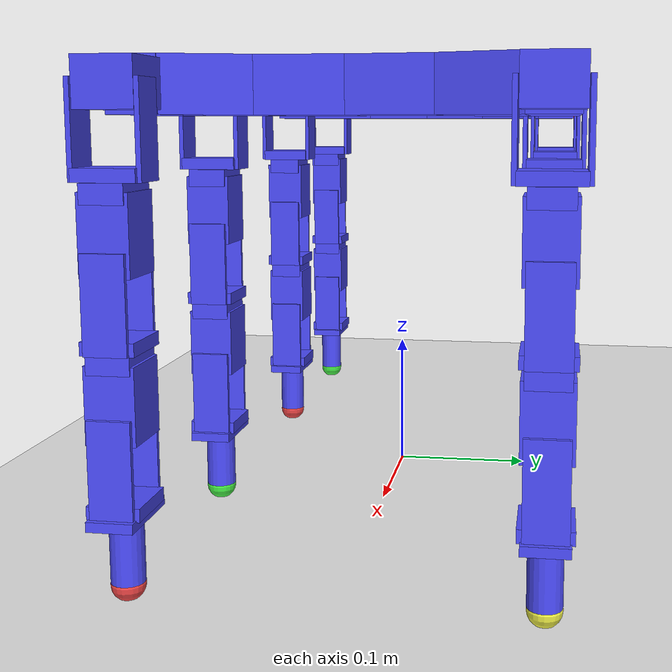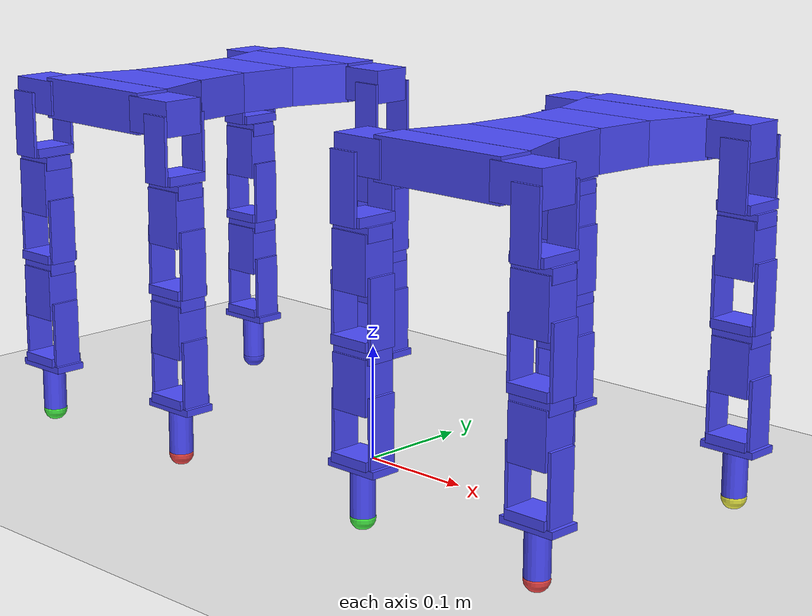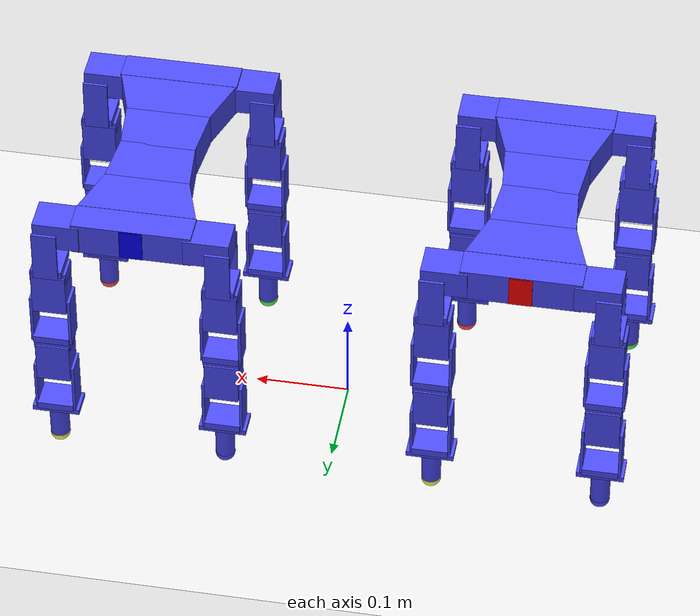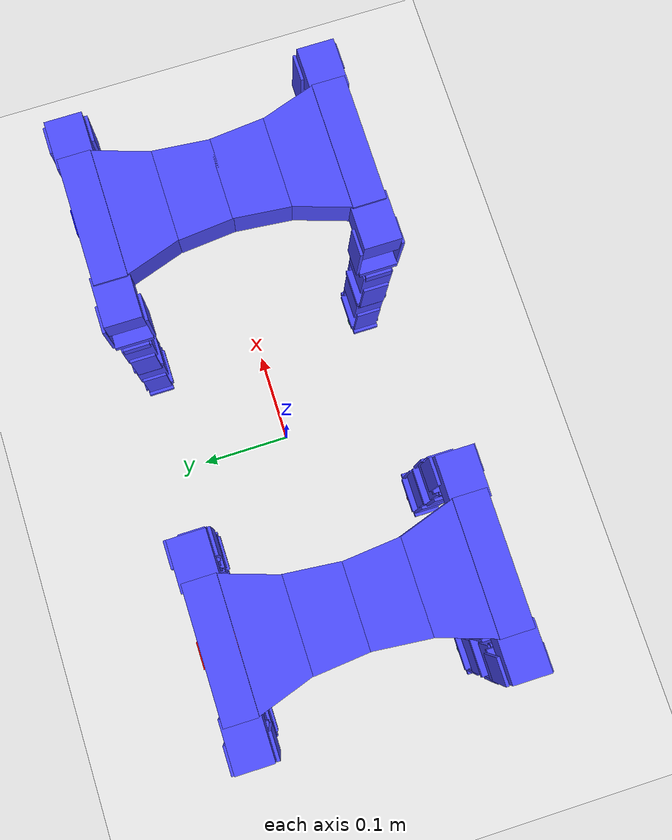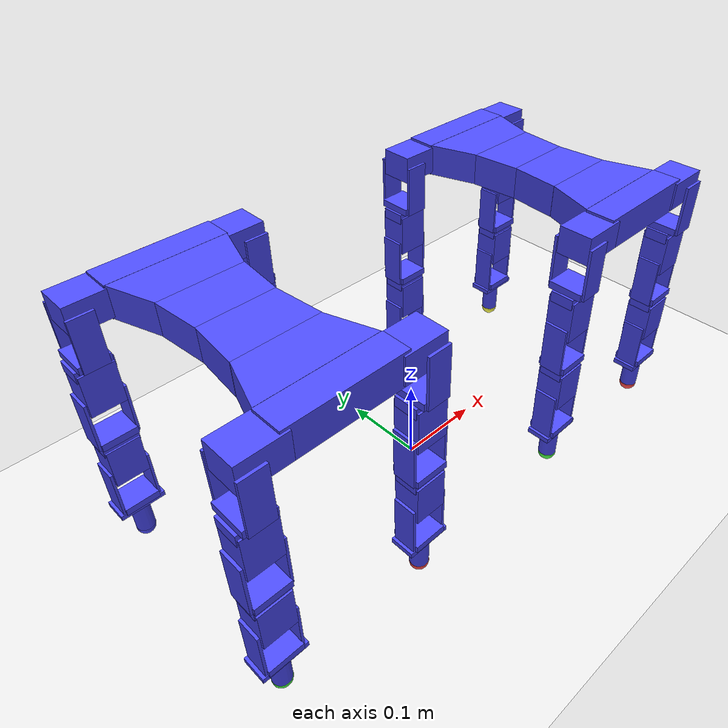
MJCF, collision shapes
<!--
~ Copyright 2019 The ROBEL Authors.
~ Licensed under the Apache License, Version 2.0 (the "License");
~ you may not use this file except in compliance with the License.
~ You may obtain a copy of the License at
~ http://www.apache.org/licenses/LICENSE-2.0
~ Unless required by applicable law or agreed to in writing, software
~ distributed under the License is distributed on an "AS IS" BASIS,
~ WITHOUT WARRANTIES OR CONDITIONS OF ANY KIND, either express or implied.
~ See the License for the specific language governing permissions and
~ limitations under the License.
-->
<?xml version="1.0"?>
<mujoco model="dkitty-v2.1">
  <include file="../scenes/basic_scene.xml"/>
  <include file="assets/dependenciesA_xh-v2.1.xml"/>
  <include file="assets/dependenciesB_xh-v2.1.xml"/>
  <compiler meshdir="."/>
  <worldbody>
    <body name="A:kitty_frame" pos="0.2 0 0.3">
      <camera name="A:trackingZ" pos="0 0 3" zaxis="0 0 3" mode="trackcom"/>
      <camera name="A:trackingY" pos="1.5 1.5 .35" xyaxes="-.7 1 0 0 -.3 1" mode="trackcom"/>
      <joint name="A:Tx" pos="0 0 0" axis="1 0 0" limited="true" type="slide" range="-5 5"/>
      <joint name="A:Ty" pos="0 0 0" axis="0 1 0" limited="true" type="slide" range="-5 5"/>
      <joint name="A:Tz" pos="0 0 0" axis="0 0 1" limited="true" type="slide" range="-2 2"/>
      <joint name="A:Rx" pos="0 0 0" axis="1 0 0" limited="true" range="-1.57 1.57"/>
      <joint name="A:Ry" pos="0 0 0" axis="0 1 0" limited="true" range="-1.57 1.57"/>
      <joint name="A:Rz" pos="0 0 0" axis="0 0 1" limited="true" range="-1.57 1.57"/>
      <include file="assets/chainA_xh-v2.1.xml"/>
    </body>
    <body name="B:kitty_frame" pos="-.2 0 0.3">
      <camera name="B:trackingZ" pos="0 0 3" zaxis="0 0 3" mode="trackcom"/>
      <camera name="B:trackingY" pos="1.5 1.5 .35" xyaxes="-.7 1 0 0 -.3 1" mode="trackcom"/>
      <joint name="B:Tx" pos="0 0 0" axis="1 0 0" limited="true" type="slide" range="-5 5"/>
      <joint name="B:Ty" pos="0 0 0" axis="0 1 0" limited="true" type="slide" range="-5 5"/>
      <joint name="B:Tz" pos="0 0 0" axis="0 0 1" limited="true" type="slide" range="-2 2"/>
      <joint name="B:Rx" pos="0 0 0" axis="1 0 0" limited="true" range="-1.57 1.57"/>
      <joint name="B:Ry" pos="0 0 0" axis="0 1 0" limited="true" range="-1.57 1.57"/>
      <joint name="B:Rz" pos="0 0 0" axis="0 0 1" limited="true" range="-1.57 1.57"/>
      <include file="assets/chainB_xh-v2.1.xml"/>
    </body>
  </worldbody>
</mujoco>

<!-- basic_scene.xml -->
<mujocoinclude>
  <asset>
    <texture name="skybox" type="skybox" builtin="gradient" rgb1=".08 .09 .10" rgb2="0 0 0" width="800" height="800" mark="random" markrgb=".8 .8 .8"/>
    <texture name="texplane" type="2d" height="1" width="1" file="../scenes/textures/white_marble_tile2.png"/>
    <material name="MatPlane" reflectance="0.05" texture="texplane" texrepeat="4 4" texuniform="true"/>
  </asset>
  <visual>
    <map fogstart="1.5" fogend="5" force="0.1" znear="0.1"/>
    <quality shadowsize="4096" offsamples="4"/>
  </visual>
  <worldbody>
    <light directional="true" diffuse=".3 .3 .3" specular="0.3 0.3 0.3" pos="-1 -1 1" dir="1 1 -1"/>
    <light directional="true" diffuse=".3 .3 .3" specular="0.3 0.3 0.3" pos="1 -1 1" dir="-1 1 -1"/>
    <light directional="true" diffuse=".3 .3 .3" specular="0.3 0.3 0.3" pos="0 1 1" dir="0 -1 -1"/>
    <geom name="floor" pos="0 0 0" size="5 5 .1" conaffinity="1" contype="1" type="plane" material="MatPlane" condim="3"/>
    <site name="xaxis" pos=".5 0 0" size=".005 .5" type="capsule" rgba="1 0 0 .25" euler="0 1.57 0" group="3"/>
    <site name="yaxis" pos="0 .5 0" size=".005 .5" type="capsule" rgba="0 1 0 .25" euler="1.57 0 0" group="3"/>
  </worldbody>
</mujocoinclude>

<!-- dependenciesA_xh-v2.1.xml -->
<mujocoinclude>
  <compiler angle="radian" inertiafromgeom="auto" inertiagrouprange="4 5"/>
  <option timestep="0.0025"/>
  <size njmax="400" nconmax="400"/>
  <asset>
    <material name="metal_black" specular="1" shininess="1" rgba="0.25 0.25 0.25 1.0"/>
    <material name="metal_grey" specular=".8" shininess=".8" rgba="0.5 0.5 0.5 1.0"/>
    <material name="plastic" specular="0.3" shininess="0" rgba="1 1 1 1"/>
    <material name="greenish" specular="0" shininess="0" rgba="0.3 1 0.3 1"/>
  </asset>
  <default>
    <default class="dkitty">
      <joint limited="true" damping="1" armature="0.001"/>
      <geom contype="1" conaffinity="1" condim="4" group="1" margin="0.001" solref=".02 1" solimp=".8 .9 .01"/>
      <position ctrlrange="-1.57 1.57" ctrllimited="true" kp="5"/>
      <default class="viz_metal_black">
        <geom contype="0" conaffinity="0" group="1" type="mesh" material="metal_black" mass="0"/>
      </default>
      <default class="viz_metal_grey">
        <geom contype="0" conaffinity="0" group="1" type="mesh" material="metal_grey" mass="0"/>
      </default>
      <default class="viz_plastic">
        <geom contype="0" conaffinity="0" group="1" type="mesh" material="plastic" mass="0"/>
      </default>
      <default class="collision">
        <geom contype="1" conaffinity="1" group="4" rgba="0.3 0.3 1.0 0.5"/>
        <site group="4"/>
      </default>
    </default>
  </default>
  <asset>
    <mesh file="../dkitty/meshes/bulkhead.stl" name="bulkhead"/>
    <mesh file="../dkitty/meshes/D_kitty_plates_V2.stl" name="D_kitty_plates_V2"/>
    <mesh file="../dkitty/meshes/bulkhead_low_poly.stl" name="bulkhead_low_poly"/>
    <mesh file="../dkitty/meshes/bulkhead_low_poly1.stl" name="bulkhead_low_poly1"/>
    <mesh file="../dkitty/meshes/bulkhead_low_poly2.stl" name="bulkhead_low_poly2"/>
    <mesh file="../dkitty/meshes/bulkhead_low_poly3.stl" name="bulkhead_low_poly3"/>
    <mesh file="../dkitty/meshes/bulkhead_low_poly4.stl" name="bulkhead_low_poly4"/>
    <mesh file="../dkitty/meshes/bulkhead_low_poly5.stl" name="bulkhead_low_poly5"/>
    <mesh file="../dkitty/meshes/fr12_h103_3.stl" name="fr12_h103_3"/>
    <mesh file="../dkitty/meshes/screws.stl" name="screws"/>
    <mesh file="../dkitty/meshes/x430_dkitty_2.stl" name="x430_dkitty_2"/>
    <mesh file="../dkitty/meshes/xh_clamping_small.stl" name="xh_clamping_small"/>
    <mesh file="../dkitty/meshes/xh_finger_tip.stl" name="xh_finger_tip"/>
  </asset>
  <actuator>
    <position name="A:FRJ10" joint="A:FRJ10" class="dkitty" ctrlrange="-3.419 0.279"/>
    <position name="A:FRJ11" joint="A:FRJ11" class="dkitty" ctrlrange="-2.14 2.14"/>
    <position name="A:FRJ12" joint="A:FRJ12" class="dkitty" ctrlrange="-1.57 1.57"/>
    <position name="A:FLJ20" joint="A:FLJ20" class="dkitty" ctrlrange="-0.279 3.419"/>
    <position name="A:FLJ21" joint="A:FLJ21" class="dkitty" ctrlrange="-2.14 2.14"/>
    <position name="A:FLJ22" joint="A:FLJ22" class="dkitty" ctrlrange="-1.57 1.57"/>
    <position name="A:BLJ30" joint="A:BLJ30" class="dkitty" ctrlrange="-0.279 3.419"/>
    <position name="A:BLJ31" joint="A:BLJ31" class="dkitty" ctrlrange="-2.14 2.14"/>
    <position name="A:BLJ32" joint="A:BLJ32" class="dkitty" ctrlrange="-1.57 1.57"/>
    <position name="A:BRJ40" joint="A:BRJ40" class="dkitty" ctrlrange="-3.419 0.279"/>
    <position name="A:BRJ41" joint="A:BRJ41" class="dkitty" ctrlrange="-2.14 2.14"/>
    <position name="A:BRJ42" joint="A:BRJ42" class="dkitty" ctrlrange="-1.57 1.57"/>
  </actuator>
  <sensor>
    <jointpos name="A:FRJ10_pos_sensor" joint="A:FRJ10"/>
    <jointpos name="A:FRJ11_pos_sensor" joint="A:FRJ11"/>
    <jointpos name="A:FRJ12_pos_sensor" joint="A:FRJ12"/>
    <jointpos name="A:FLJ20_pos_sensor" joint="A:FLJ20"/>
    <jointpos name="A:FLJ21_pos_sensor" joint="A:FLJ21"/>
    <jointpos name="A:FLJ22_pos_sensor" joint="A:FLJ22"/>
    <jointpos name="A:BLJ30_pos_sensor" joint="A:BLJ30"/>
    <jointpos name="A:BLJ31_pos_sensor" joint="A:BLJ31"/>
    <jointpos name="A:BLJ32_pos_sensor" joint="A:BLJ32"/>
    <jointpos name="A:BRJ40_pos_sensor" joint="A:BRJ40"/>
    <jointpos name="A:BRJ41_pos_sensor" joint="A:BRJ41"/>
    <jointpos name="A:BRJ42_pos_sensor" joint="A:BRJ42"/>
    <jointvel name="A:FRJ10_velocity_sensor" joint="A:FRJ10"/>
    <jointvel name="A:FRJ11_velocity_sensor" joint="A:FRJ11"/>
    <jointvel name="A:FRJ12_velocity_sensor" joint="A:FRJ12"/>
    <jointvel name="A:FLJ20_velocity_sensor" joint="A:FLJ20"/>
    <jointvel name="A:FLJ21_velocity_sensor" joint="A:FLJ21"/>
    <jointvel name="A:FLJ22_velocity_sensor" joint="A:FLJ22"/>
    <jointvel name="A:BLJ30_velocity_sensor" joint="A:BLJ30"/>
    <jointvel name="A:BLJ31_velocity_sensor" joint="A:BLJ31"/>
    <jointvel name="A:BLJ32_velocity_sensor" joint="A:BLJ32"/>
    <jointvel name="A:BRJ40_velocity_sensor" joint="A:BRJ40"/>
    <jointvel name="A:BRJ41_velocity_sensor" joint="A:BRJ41"/>
    <jointvel name="A:BRJ42_velocity_sensor" joint="A:BRJ42"/>
  </sensor>
</mujocoinclude>

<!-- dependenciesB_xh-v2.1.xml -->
<mujocoinclude>
  <actuator>
    <position name="B:FRJ10" joint="B:FRJ10" class="dkitty" ctrlrange="-3.419 0.279"/>
    <position name="B:FRJ11" joint="B:FRJ11" class="dkitty" ctrlrange="-2.14 2.14"/>
    <position name="B:FRJ12" joint="B:FRJ12" class="dkitty" ctrlrange="-1.57 1.57"/>
    <position name="B:FLJ20" joint="B:FLJ20" class="dkitty" ctrlrange="-0.279 3.419"/>
    <position name="B:FLJ21" joint="B:FLJ21" class="dkitty" ctrlrange="-2.14 2.14"/>
    <position name="B:FLJ22" joint="B:FLJ22" class="dkitty" ctrlrange="-1.57 1.57"/>
    <position name="B:BLJ30" joint="B:BLJ30" class="dkitty" ctrlrange="-0.279 3.419"/>
    <position name="B:BLJ31" joint="B:BLJ31" class="dkitty" ctrlrange="-2.14 2.14"/>
    <position name="B:BLJ32" joint="B:BLJ32" class="dkitty" ctrlrange="-1.57 1.57"/>
    <position name="B:BRJ40" joint="B:BRJ40" class="dkitty" ctrlrange="-3.419 0.279"/>
    <position name="B:BRJ41" joint="B:BRJ41" class="dkitty" ctrlrange="-2.14 2.14"/>
    <position name="B:BRJ42" joint="B:BRJ42" class="dkitty" ctrlrange="-1.57 1.57"/>
  </actuator>
  <sensor>
    <jointpos name="B:FRJ10_pos_sensor" joint="B:FRJ10"/>
    <jointpos name="B:FRJ11_pos_sensor" joint="B:FRJ11"/>
    <jointpos name="B:FRJ12_pos_sensor" joint="B:FRJ12"/>
    <jointpos name="B:FLJ20_pos_sensor" joint="B:FLJ20"/>
    <jointpos name="B:FLJ21_pos_sensor" joint="B:FLJ21"/>
    <jointpos name="B:FLJ22_pos_sensor" joint="B:FLJ22"/>
    <jointpos name="B:BLJ30_pos_sensor" joint="B:BLJ30"/>
    <jointpos name="B:BLJ31_pos_sensor" joint="B:BLJ31"/>
    <jointpos name="B:BLJ32_pos_sensor" joint="B:BLJ32"/>
    <jointpos name="B:BRJ40_pos_sensor" joint="B:BRJ40"/>
    <jointpos name="B:BRJ41_pos_sensor" joint="B:BRJ41"/>
    <jointpos name="B:BRJ42_pos_sensor" joint="B:BRJ42"/>
    <jointvel name="B:FRJ10_velocity_sensor" joint="B:FRJ10"/>
    <jointvel name="B:FRJ11_velocity_sensor" joint="B:FRJ11"/>
    <jointvel name="B:FRJ12_velocity_sensor" joint="B:FRJ12"/>
    <jointvel name="B:FLJ20_velocity_sensor" joint="B:FLJ20"/>
    <jointvel name="B:FLJ21_velocity_sensor" joint="B:FLJ21"/>
    <jointvel name="B:FLJ22_velocity_sensor" joint="B:FLJ22"/>
    <jointvel name="B:BLJ30_velocity_sensor" joint="B:BLJ30"/>
    <jointvel name="B:BLJ31_velocity_sensor" joint="B:BLJ31"/>
    <jointvel name="B:BLJ32_velocity_sensor" joint="B:BLJ32"/>
    <jointvel name="B:BRJ40_velocity_sensor" joint="B:BRJ40"/>
    <jointvel name="B:BRJ41_velocity_sensor" joint="B:BRJ41"/>
    <jointvel name="B:BRJ42_velocity_sensor" joint="B:BRJ42"/>
  </sensor>
</mujocoinclude>

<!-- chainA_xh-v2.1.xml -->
<mujocoinclude>
  <body childclass="dkitty" name="A:dkitty">
    <!-- Torso -->
    <geom class="viz_plastic" name="A:head" type="box" size=".012 .035 .017" pos="0 0.104 0" rgba="0 0 1 1"/>
    <geom class="viz_plastic" mesh="D_kitty_plates_V2" pos="0 0 0.0155" rgba=".3 .3 1 1"/>
    <geom class="viz_plastic" mesh="D_kitty_plates_V2" pos="0 0 -0.0155" rgba=".3 .3 1 1"/>
    <geom class="viz_metal_grey" mesh="screws"/>
    <geom class="viz_plastic" mesh="bulkhead"/>
    <geom class="collision" mesh="bulkhead_low_poly" type="mesh" mass=".038"/>
    <geom class="collision" mesh="bulkhead_low_poly1" type="mesh" mass=".085"/>
    <geom class="collision" mesh="bulkhead_low_poly2" type="mesh" mass=".065"/>
    <geom class="collision" mesh="bulkhead_low_poly3" type="mesh" mass=".065"/>
    <geom class="collision" mesh="bulkhead_low_poly4" type="mesh" mass=".085"/>
    <geom class="collision" mesh="bulkhead_low_poly5" type="mesh" mass=".038"/>
    <geom class="viz_metal_black" euler="1.57 -1.57 0" mesh="x430_dkitty_2" pos=".08 -0.121 0"/>
    <geom class="viz_metal_black" euler="-1.57 -1.57 0" mesh="x430_dkitty_2" pos=".08 0.121 0"/>
    <geom class="viz_metal_black" euler="1.57 1.57 0" mesh="x430_dkitty_2" pos="-.08 0.121 0"/>
    <geom class="viz_metal_black" euler="-1.57 1.57 0" mesh="x430_dkitty_2" pos="-.08 -0.121 0"/>
    <geom class="collision" pos="0.078 -0.122 0" size="0.024 0.018 0.015" type="box" mass=".086"/>
    <geom class="collision" pos="-0.078 -0.122 0" size="0.024 0.018 0.015" type="box" mass=".086"/>
    <geom class="collision" pos="-0.078 0.122 0" size="0.024 0.018 0.015" type="box" mass=".086"/>
    <geom class="collision" pos="0.078 0.122 0" size="0.024 0.018 0.015" type="box" mass=".086"/>
    <!-- Front Right Leg -->
    <body euler="0 -3.14 0" name="A:FR10" pos="0.09 0.122 0">
      <joint axis="0 1 0" name="A:FRJ10" range="-3.419 0.279"/>
      <geom class="viz_metal_grey" euler="0 0 1.57" mesh="fr12_h103_3" pos="0 0 0.0005"/>
      <geom class="viz_metal_black" euler="0 3.14 0" mesh="x430_dkitty_2" pos="0 0 0.086"/>
      <geom class="viz_metal_black" mesh="xh_clamping_small" pos="0 0 0.055"/>
      <geom class="collision" euler="0 0 1.57" pos="0 -0.02 0.026" size="0.0015 0.013 0.029" type="box" mass=".005"/>
      <geom class="collision" euler="0 0 1.57" pos="0 0.02 0.026" size="0.0015 0.013 0.029" type="box" mass=".005"/>
      <geom class="collision" euler="0 0 1.57" pos="0 0 0.051" size="0.019 0.016 0.004" type="box" mass=".008"/>
      <geom class="collision" pos="0 0 0.061" size="0.019 0.013 0.006" type="box" mass=".005"/>
      <geom class="collision" pos="0 0 0.084" size="0.018 0.015 0.024" type="box" mass=".095"/>
      <body name="A:FR11" pos="0 0 0.0965">
        <joint axis="1 0 0" name="A:FRJ11" range="-2.14 2.14"/>
        <geom class="viz_metal_grey" mesh="fr12_h103_3"/>
        <geom class="viz_metal_black" euler="0 3.14 0" mesh="x430_dkitty_2" pos="0 0 0.085"/>
        <geom class="viz_metal_black" mesh="xh_clamping_small" pos="0 0 0.0545"/>
        <geom class="collision" pos="0 0 0.051" size="0.019 0.016 0.004" type="box" mass=".008"/>
        <geom class="collision" pos="-0.02 0 0.026" size="0.0015 0.013 0.029" type="box" mass=".005"/>
        <geom class="collision" pos="0.02 0 0.026" size="0.0015 0.013 0.029" type="box" mass=".005"/>
        <geom class="collision" pos="0 0 0.084" size="0.018 0.015 0.023" type="box" mass=".095"/>
        <geom class="collision" pos="0 0 0.06" size="0.019 0.013 0.006" type="box" mass=".005"/>
        <body name="A:FR12" pos="0 0 0.0945">
          <joint axis="1 0 0" name="A:FRJ12" range="-1.57 1.57"/>
          <geom class="viz_metal_grey" mesh="fr12_h103_3" pos="0 0 0.001"/>
          <geom class="viz_plastic" mesh="xh_finger_tip" pos="0 0 0.055"/>
          <geom class="collision" pos="0.02 0 0.026" size="0.0015 0.013 0.029" type="box" mass=".005"/>
          <geom class="collision" pos="-0.02 0 0.026" size="0.0015 0.013 0.029" type="box" mass=".005"/>
          <geom class="collision" pos="0 0 0.052" size="0.019 0.016 0.004" type="box" mass=".008"/>
          <geom class="collision" pos="0 0 0.058" size="0.025 0.014 0.003" type="box" mass=".002"/>
          <geom class="collision" pos="0 0 0.082" size="0.0103 0.0187" type="capsule" mass=".02"/>
          <site name="A:FLfoot" group="1" type="sphere" pos="0 0 .101" size="0.0105" rgba="1 1 .3 1"/>
        </body>
      </body>
    </body>
    <!-- Front Left Leg -->
    <body euler="0 3.14 0" name="A:FL20" pos="-0.09 0.122 0">
      <joint axis="0 1 0" name="A:FLJ20" range="-0.279 3.419"/>
      <geom class="viz_metal_grey" euler="0 0 1.57" mesh="fr12_h103_3" pos="0 0 0.0005"/>
      <geom class="viz_metal_black" euler="0 3.14 0" mesh="x430_dkitty_2" pos="0 0 0.086"/>
      <geom class="viz_metal_black" mesh="xh_clamping_small" pos="0 0 0.055"/>
      <geom class="collision" euler="0 0 1.57" pos="0 -0.02 0.026" size="0.0015 0.013 0.029" type="box" mass=".005"/>
      <geom class="collision" euler="0 0 1.57" pos="0 0.02 0.026" size="0.0015 0.013 0.029" type="box" mass=".005"/>
      <geom class="collision" euler="0 0 1.57" pos="0 0 0.051" size="0.019 0.016 0.004" type="box" mass=".008"/>
      <geom class="collision" pos="0 0 0.061" size="0.019 0.013 0.006" type="box" mass=".005"/>
      <geom class="collision" pos="0 0 0.084" size="0.018 0.015 0.024" type="box" mass=".095"/>
      <body name="A:FL21" pos="0 0 0.0965">
        <joint axis="1 0 0" name="A:FLJ21" range="-2.14 2.14"/>
        <geom class="viz_metal_grey" mesh="fr12_h103_3"/>
        <geom class="viz_metal_black" euler="0 3.14 0" mesh="x430_dkitty_2" pos="0 0 0.085"/>
        <geom class="viz_metal_black" mesh="xh_clamping_small" pos="0 0 0.0545"/>
        <geom class="collision" pos="0 0 0.051" size="0.019 0.016 0.004" type="box" mass=".008"/>
        <geom class="collision" pos="-0.02 0 0.026" size="0.0015 0.013 0.029" type="box" mass=".005"/>
        <geom class="collision" pos="0.02 0 0.026" size="0.0015 0.013 0.029" type="box" mass=".005"/>
        <geom class="collision" pos="0 0 0.084" size="0.018 0.015 0.023" type="box" mass=".095"/>
        <geom class="collision" pos="0 0 0.06" size="0.019 0.013 0.006" type="box" mass=".005"/>
        <body name="A:FL22" pos="0 0 0.0945">
          <joint axis="1 0 0" name="A:FLJ22" range="-1.57 1.57"/>
          <geom class="viz_metal_grey" mesh="fr12_h103_3" pos="0 0 0.001"/>
          <geom class="viz_plastic" mesh="xh_finger_tip" pos="0 0 0.055"/>
          <geom class="collision" pos="0.02 0 0.026" size="0.0015 0.013 0.029" type="box" mass=".005"/>
          <geom class="collision" pos="-0.02 0 0.026" size="0.0015 0.013 0.029" type="box" mass=".005"/>
          <geom class="collision" pos="0 0 0.052" size="0.019 0.016 0.004" type="box" mass=".008"/>
          <geom class="collision" pos="0 0 0.058" size="0.025 0.014 0.003" type="box" mass=".002"/>
          <geom class="collision" pos="0 0 0.082" size="0.0103 0.0187" type="capsule" mass=".02"/>
          <site name="A:FRfoot" group="1" type="sphere" pos="0 0 .101" size="0.0105" rgba=".3 .3 1 1"/>
        </body>
      </body>
    </body>
    <!-- Back Left Leg -->
    <body euler="0 3.14 0" name="A:BL30" pos="-0.09 -0.122 0">
      <joint axis="0 1 0" name="A:BLJ30" range="-0.279 3.419"/>
      <geom class="viz_metal_grey" euler="0 0 1.57" mesh="fr12_h103_3" pos="0 0 0.0005"/>
      <geom class="viz_metal_black" euler="0 3.14 0" mesh="x430_dkitty_2" pos="0 0 0.086"/>
      <geom class="viz_metal_black" mesh="xh_clamping_small" pos="0 0 0.055"/>
      <geom class="collision" euler="0 0 1.57" pos="0 -0.02 0.026" size="0.0015 0.013 0.029" type="box" mass=".005"/>
      <geom class="collision" euler="0 0 1.57" pos="0 0.02 0.026" size="0.0015 0.013 0.029" type="box" mass=".005"/>
      <geom class="collision" euler="0 0 1.57" pos="0 0 0.051" size="0.019 0.016 0.004" type="box" mass=".008"/>
      <geom class="collision" pos="0 0 0.061" size="0.019 0.013 0.006" type="box" mass=".005"/>
      <geom class="collision" pos="0 0 0.084" size="0.018 0.015 0.024" type="box" mass=".095"/>
      <body name="A:BL31" pos="0 0 0.0965">
        <joint axis="1 0 0" name="A:BLJ31" range="-2.14 2.14"/>
        <geom class="viz_metal_grey" mesh="fr12_h103_3"/>
        <geom class="viz_metal_black" euler="0 3.14 0" mesh="x430_dkitty_2" pos="0 0 0.085"/>
        <geom class="viz_metal_black" mesh="xh_clamping_small" pos="0 0 0.0545"/>
        <geom class="collision" pos="0 0 0.051" size="0.019 0.016 0.004" type="box" mass=".008"/>
        <geom class="collision" pos="-0.02 0 0.026" size="0.0015 0.013 0.029" type="box" mass=".005"/>
        <geom class="collision" pos="0.02 0 0.026" size="0.0015 0.013 0.029" type="box" mass=".005"/>
        <geom class="collision" pos="0 0 0.084" size="0.018 0.015 0.023" type="box" mass=".095"/>
        <geom class="collision" pos="0 0 0.06" size="0.019 0.013 0.006" type="box" mass=".005"/>
        <body name="A:BL32" pos="0 0 0.0945">
          <joint axis="1 0 0" name="A:BLJ32" range="-1.57 1.57"/>
          <geom class="viz_metal_grey" mesh="fr12_h103_3" pos="0 0 0.001"/>
          <geom class="viz_plastic" mesh="xh_finger_tip" pos="0 0 0.055"/>
          <geom class="collision" pos="0.02 0 0.026" size="0.0015 0.013 0.029" type="box" mass=".005"/>
          <geom class="collision" pos="-0.02 0 0.026" size="0.0015 0.013 0.029" type="box" mass=".005"/>
          <geom class="collision" pos="0 0 0.052" size="0.019 0.016 0.004" type="box" mass=".008"/>
          <geom class="collision" pos="0 0 0.058" size="0.025 0.014 0.003" type="box" mass=".002"/>
          <geom class="collision" pos="0 0 0.082" size="0.0103 0.0187" type="capsule" mass=".02"/>
          <site name="A:BLfoot" group="1" type="sphere" pos="0 0 .101" size="0.0105" rgba=".3 1 .3 1"/>
        </body>
      </body>
    </body>
    <!-- Back Right Leg -->
    <body euler="0 -3.14 0" name="A:BR40" pos="0.09 -0.122 0">
      <joint axis="0 1 0" name="A:BRJ40" range="-3.419 0.279"/>
      <geom class="viz_metal_grey" euler="0 0 1.57" mesh="fr12_h103_3" pos="0 0 0.0005"/>
      <geom class="viz_metal_black" euler="0 3.14 0" mesh="x430_dkitty_2" pos="0 0 0.086"/>
      <geom class="viz_metal_black" mesh="xh_clamping_small" pos="0 0 0.055"/>
      <geom class="collision" euler="0 0 1.57" pos="0 -0.02 0.026" size="0.0015 0.013 0.029" type="box" mass=".005"/>
      <geom class="collision" euler="0 0 1.57" pos="0 0.02 0.026" size="0.0015 0.013 0.029" type="box" mass=".005"/>
      <geom class="collision" euler="0 0 1.57" pos="0 0 0.051" size="0.019 0.016 0.004" type="box" mass=".008"/>
      <geom class="collision" pos="0 0 0.061" size="0.019 0.013 0.006" type="box" mass=".005"/>
      <geom class="collision" pos="0 0 0.084" size="0.018 0.015 0.024" type="box" mass=".095"/>
      <body name="A:BR41" pos="0 0 0.0965">
        <joint axis="1 0 0" name="A:BRJ41" range="-2.14 2.14"/>
        <geom class="viz_metal_grey" mesh="fr12_h103_3"/>
        <geom class="viz_metal_black" euler="0 3.14 0" mesh="x430_dkitty_2" pos="0 0 0.085"/>
        <geom class="viz_metal_black" mesh="xh_clamping_small" pos="0 0 0.0545"/>
        <geom class="collision" pos="0 0 0.051" size="0.019 0.016 0.004" type="box" mass=".008"/>
        <geom class="collision" pos="-0.02 0 0.026" size="0.0015 0.013 0.029" type="box" mass=".005"/>
        <geom class="collision" pos="0.02 0 0.026" size="0.0015 0.013 0.029" type="box" mass=".005"/>
        <geom class="collision" pos="0 0 0.084" size="0.018 0.015 0.023" type="box" mass=".095"/>
        <geom class="collision" pos="0 0 0.06" size="0.019 0.013 0.006" type="box" mass=".005"/>
        <body name="A:BR42" pos="0 0 0.0945">
          <joint axis="1 0 0" name="A:BRJ42" range="-1.57 1.57"/>
          <geom class="viz_metal_grey" mesh="fr12_h103_3" pos="0 0 0.001"/>
          <geom class="viz_plastic" mesh="xh_finger_tip" pos="0 0 0.055"/>
          <geom class="collision" pos="0.02 0 0.026" size="0.0015 0.013 0.029" type="box" mass=".005"/>
          <geom class="collision" pos="-0.02 0 0.026" size="0.0015 0.013 0.029" type="box" mass=".005"/>
          <geom class="collision" pos="0 0 0.052" size="0.019 0.016 0.004" type="box" mass=".008"/>
          <geom class="collision" pos="0 0 0.058" size="0.025 0.014 0.003" type="box" mass=".002"/>
          <geom class="collision" pos="0 0 0.082" size="0.0103 0.0187" type="capsule" mass=".02"/>
          <site name="A:BRfoot" group="1" type="sphere" pos="0 0 .101" size="0.0105" rgba="1 .3 .3 1"/>
        </body>
      </body>
    </body>
  </body>
</mujocoinclude>

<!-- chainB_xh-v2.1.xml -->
<mujocoinclude>
  <body childclass="dkitty" name="B:dkitty">
    <!-- Torso -->
    <geom class="viz_plastic" name="B:head" type="box" size=".012 .035 .017" pos="0 0.104 0" rgba="1 0 0 1"/>
    <geom class="viz_plastic" mesh="D_kitty_plates_V2" pos="0 0 0.0155" rgba="1 .3 .3 1"/>
    <geom class="viz_plastic" mesh="D_kitty_plates_V2" pos="0 0 -0.0155" rgba="1 .3 .3 1"/>
    <geom class="viz_metal_grey" mesh="screws"/>
    <geom class="viz_plastic" mesh="bulkhead"/>
    <geom class="collision" mesh="bulkhead_low_poly" type="mesh" mass=".038"/>
    <geom class="collision" mesh="bulkhead_low_poly1" type="mesh" mass=".085"/>
    <geom class="collision" mesh="bulkhead_low_poly2" type="mesh" mass=".065"/>
    <geom class="collision" mesh="bulkhead_low_poly3" type="mesh" mass=".065"/>
    <geom class="collision" mesh="bulkhead_low_poly4" type="mesh" mass=".085"/>
    <geom class="collision" mesh="bulkhead_low_poly5" type="mesh" mass=".038"/>
    <geom class="viz_metal_black" euler="1.57 -1.57 0" mesh="x430_dkitty_2" pos=".08 -0.121 0"/>
    <geom class="viz_metal_black" euler="-1.57 -1.57 0" mesh="x430_dkitty_2" pos=".08 0.121 0"/>
    <geom class="viz_metal_black" euler="1.57 1.57 0" mesh="x430_dkitty_2" pos="-.08 0.121 0"/>
    <geom class="viz_metal_black" euler="-1.57 1.57 0" mesh="x430_dkitty_2" pos="-.08 -0.121 0"/>
    <geom class="collision" pos="0.078 -0.122 0" size="0.024 0.018 0.015" type="box" mass=".086"/>
    <geom class="collision" pos="-0.078 -0.122 0" size="0.024 0.018 0.015" type="box" mass=".086"/>
    <geom class="collision" pos="-0.078 0.122 0" size="0.024 0.018 0.015" type="box" mass=".086"/>
    <geom class="collision" pos="0.078 0.122 0" size="0.024 0.018 0.015" type="box" mass=".086"/>
    <!-- Front Right Leg -->
    <body euler="0 -3.14 0" name="B:FR10" pos="0.09 0.122 0">
      <joint axis="0 1 0" name="B:FRJ10" range="-3.419 0.279"/>
      <geom class="viz_metal_grey" euler="0 0 1.57" mesh="fr12_h103_3" pos="0 0 0.0005"/>
      <geom class="viz_metal_black" euler="0 3.14 0" mesh="x430_dkitty_2" pos="0 0 0.086"/>
      <geom class="viz_metal_black" mesh="xh_clamping_small" pos="0 0 0.055"/>
      <geom class="collision" euler="0 0 1.57" pos="0 -0.02 0.026" size="0.0015 0.013 0.029" type="box" mass=".005"/>
      <geom class="collision" euler="0 0 1.57" pos="0 0.02 0.026" size="0.0015 0.013 0.029" type="box" mass=".005"/>
      <geom class="collision" euler="0 0 1.57" pos="0 0 0.051" size="0.019 0.016 0.004" type="box" mass=".008"/>
      <geom class="collision" pos="0 0 0.061" size="0.019 0.013 0.006" type="box" mass=".005"/>
      <geom class="collision" pos="0 0 0.084" size="0.018 0.015 0.024" type="box" mass=".095"/>
      <body name="B:FR11" pos="0 0 0.0965">
        <joint axis="1 0 0" name="B:FRJ11" range="-2.14 2.14"/>
        <geom class="viz_metal_grey" mesh="fr12_h103_3"/>
        <geom class="viz_metal_black" euler="0 3.14 0" mesh="x430_dkitty_2" pos="0 0 0.085"/>
        <geom class="viz_metal_black" mesh="xh_clamping_small" pos="0 0 0.0545"/>
        <geom class="collision" pos="0 0 0.051" size="0.019 0.016 0.004" type="box" mass=".008"/>
        <geom class="collision" pos="-0.02 0 0.026" size="0.0015 0.013 0.029" type="box" mass=".005"/>
        <geom class="collision" pos="0.02 0 0.026" size="0.0015 0.013 0.029" type="box" mass=".005"/>
        <geom class="collision" pos="0 0 0.084" size="0.018 0.015 0.023" type="box" mass=".095"/>
        <geom class="collision" pos="0 0 0.06" size="0.019 0.013 0.006" type="box" mass=".005"/>
        <body name="B:FR12" pos="0 0 0.0945">
          <joint axis="1 0 0" name="B:FRJ12" range="-1.57 1.57"/>
          <geom class="viz_metal_grey" mesh="fr12_h103_3" pos="0 0 0.001"/>
          <geom class="viz_plastic" mesh="xh_finger_tip" pos="0 0 0.055"/>
          <geom class="collision" pos="0.02 0 0.026" size="0.0015 0.013 0.029" type="box" mass=".005"/>
          <geom class="collision" pos="-0.02 0 0.026" size="0.0015 0.013 0.029" type="box" mass=".005"/>
          <geom class="collision" pos="0 0 0.052" size="0.019 0.016 0.004" type="box" mass=".008"/>
          <geom class="collision" pos="0 0 0.058" size="0.025 0.014 0.003" type="box" mass=".002"/>
          <geom class="collision" pos="0 0 0.082" size="0.0103 0.0187" type="capsule" mass=".02"/>
          <site name="B:FLfoot" group="1" type="sphere" pos="0 0 .101" size="0.0105" rgba="1 1 .3 1"/>
        </body>
      </body>
    </body>
    <!-- Front Left Leg -->
    <body euler="0 3.14 0" name="B:FL20" pos="-0.09 0.122 0">
      <joint axis="0 1 0" name="B:FLJ20" range="-0.279 3.419"/>
      <geom class="viz_metal_grey" euler="0 0 1.57" mesh="fr12_h103_3" pos="0 0 0.0005"/>
      <geom class="viz_metal_black" euler="0 3.14 0" mesh="x430_dkitty_2" pos="0 0 0.086"/>
      <geom class="viz_metal_black" mesh="xh_clamping_small" pos="0 0 0.055"/>
      <geom class="collision" euler="0 0 1.57" pos="0 -0.02 0.026" size="0.0015 0.013 0.029" type="box" mass=".005"/>
      <geom class="collision" euler="0 0 1.57" pos="0 0.02 0.026" size="0.0015 0.013 0.029" type="box" mass=".005"/>
      <geom class="collision" euler="0 0 1.57" pos="0 0 0.051" size="0.019 0.016 0.004" type="box" mass=".008"/>
      <geom class="collision" pos="0 0 0.061" size="0.019 0.013 0.006" type="box" mass=".005"/>
      <geom class="collision" pos="0 0 0.084" size="0.018 0.015 0.024" type="box" mass=".095"/>
      <body name="B:FL21" pos="0 0 0.0965">
        <joint axis="1 0 0" name="B:FLJ21" range="-2.14 2.14"/>
        <geom class="viz_metal_grey" mesh="fr12_h103_3"/>
        <geom class="viz_metal_black" euler="0 3.14 0" mesh="x430_dkitty_2" pos="0 0 0.085"/>
        <geom class="viz_metal_black" mesh="xh_clamping_small" pos="0 0 0.0545"/>
        <geom class="collision" pos="0 0 0.051" size="0.019 0.016 0.004" type="box" mass=".008"/>
        <geom class="collision" pos="-0.02 0 0.026" size="0.0015 0.013 0.029" type="box" mass=".005"/>
        <geom class="collision" pos="0.02 0 0.026" size="0.0015 0.013 0.029" type="box" mass=".005"/>
        <geom class="collision" pos="0 0 0.084" size="0.018 0.015 0.023" type="box" mass=".095"/>
        <geom class="collision" pos="0 0 0.06" size="0.019 0.013 0.006" type="box" mass=".005"/>
        <body name="B:FL22" pos="0 0 0.0945">
          <joint axis="1 0 0" name="B:FLJ22" range="-1.57 1.57"/>
          <geom class="viz_metal_grey" mesh="fr12_h103_3" pos="0 0 0.001"/>
          <geom class="viz_plastic" mesh="xh_finger_tip" pos="0 0 0.055"/>
          <geom class="collision" pos="0.02 0 0.026" size="0.0015 0.013 0.029" type="box" mass=".005"/>
          <geom class="collision" pos="-0.02 0 0.026" size="0.0015 0.013 0.029" type="box" mass=".005"/>
          <geom class="collision" pos="0 0 0.052" size="0.019 0.016 0.004" type="box" mass=".008"/>
          <geom class="collision" pos="0 0 0.058" size="0.025 0.014 0.003" type="box" mass=".002"/>
          <geom class="collision" pos="0 0 0.082" size="0.0103 0.0187" type="capsule" mass=".02"/>
          <site name="B:FRfoot" group="1" type="sphere" pos="0 0 .101" size="0.0105" rgba=".3 .3 1 1"/>
        </body>
      </body>
    </body>
    <!-- Back Left Leg -->
    <body euler="0 3.14 0" name="B:BL30" pos="-0.09 -0.122 0">
      <joint axis="0 1 0" name="B:BLJ30" range="-0.279 3.419"/>
      <geom class="viz_metal_grey" euler="0 0 1.57" mesh="fr12_h103_3" pos="0 0 0.0005"/>
      <geom class="viz_metal_black" euler="0 3.14 0" mesh="x430_dkitty_2" pos="0 0 0.086"/>
      <geom class="viz_metal_black" mesh="xh_clamping_small" pos="0 0 0.055"/>
      <geom class="collision" euler="0 0 1.57" pos="0 -0.02 0.026" size="0.0015 0.013 0.029" type="box" mass=".005"/>
      <geom class="collision" euler="0 0 1.57" pos="0 0.02 0.026" size="0.0015 0.013 0.029" type="box" mass=".005"/>
      <geom class="collision" euler="0 0 1.57" pos="0 0 0.051" size="0.019 0.016 0.004" type="box" mass=".008"/>
      <geom class="collision" pos="0 0 0.061" size="0.019 0.013 0.006" type="box" mass=".005"/>
      <geom class="collision" pos="0 0 0.084" size="0.018 0.015 0.024" type="box" mass=".095"/>
      <body name="B:BL31" pos="0 0 0.0965">
        <joint axis="1 0 0" name="B:BLJ31" range="-2.14 2.14"/>
        <geom class="viz_metal_grey" mesh="fr12_h103_3"/>
        <geom class="viz_metal_black" euler="0 3.14 0" mesh="x430_dkitty_2" pos="0 0 0.085"/>
        <geom class="viz_metal_black" mesh="xh_clamping_small" pos="0 0 0.0545"/>
        <geom class="collision" pos="0 0 0.051" size="0.019 0.016 0.004" type="box" mass=".008"/>
        <geom class="collision" pos="-0.02 0 0.026" size="0.0015 0.013 0.029" type="box" mass=".005"/>
        <geom class="collision" pos="0.02 0 0.026" size="0.0015 0.013 0.029" type="box" mass=".005"/>
        <geom class="collision" pos="0 0 0.084" size="0.018 0.015 0.023" type="box" mass=".095"/>
        <geom class="collision" pos="0 0 0.06" size="0.019 0.013 0.006" type="box" mass=".005"/>
        <body name="B:BL32" pos="0 0 0.0945">
          <joint axis="1 0 0" name="B:BLJ32" range="-1.57 1.57"/>
          <geom class="viz_metal_grey" mesh="fr12_h103_3" pos="0 0 0.001"/>
          <geom class="viz_plastic" mesh="xh_finger_tip" pos="0 0 0.055"/>
          <geom class="collision" pos="0.02 0 0.026" size="0.0015 0.013 0.029" type="box" mass=".005"/>
          <geom class="collision" pos="-0.02 0 0.026" size="0.0015 0.013 0.029" type="box" mass=".005"/>
          <geom class="collision" pos="0 0 0.052" size="0.019 0.016 0.004" type="box" mass=".008"/>
          <geom class="collision" pos="0 0 0.058" size="0.025 0.014 0.003" type="box" mass=".002"/>
          <geom class="collision" pos="0 0 0.082" size="0.0103 0.0187" type="capsule" mass=".02"/>
          <site name="B:BLfoot" group="1" type="sphere" pos="0 0 .101" size="0.0105" rgba=".3 1 .3 1"/>
        </body>
      </body>
    </body>
    <!-- Back Right Leg -->
    <body euler="0 -3.14 0" name="B:BR40" pos="0.09 -0.122 0">
      <joint axis="0 1 0" name="B:BRJ40" range="-3.419 0.279"/>
      <geom class="viz_metal_grey" euler="0 0 1.57" mesh="fr12_h103_3" pos="0 0 0.0005"/>
      <geom class="viz_metal_black" euler="0 3.14 0" mesh="x430_dkitty_2" pos="0 0 0.086"/>
      <geom class="viz_metal_black" mesh="xh_clamping_small" pos="0 0 0.055"/>
      <geom class="collision" euler="0 0 1.57" pos="0 -0.02 0.026" size="0.0015 0.013 0.029" type="box" mass=".005"/>
      <geom class="collision" euler="0 0 1.57" pos="0 0.02 0.026" size="0.0015 0.013 0.029" type="box" mass=".005"/>
      <geom class="collision" euler="0 0 1.57" pos="0 0 0.051" size="0.019 0.016 0.004" type="box" mass=".008"/>
      <geom class="collision" pos="0 0 0.061" size="0.019 0.013 0.006" type="box" mass=".005"/>
      <geom class="collision" pos="0 0 0.084" size="0.018 0.015 0.024" type="box" mass=".095"/>
      <body name="B:BR41" pos="0 0 0.0965">
        <joint axis="1 0 0" name="B:BRJ41" range="-2.14 2.14"/>
        <geom class="viz_metal_grey" mesh="fr12_h103_3"/>
        <geom class="viz_metal_black" euler="0 3.14 0" mesh="x430_dkitty_2" pos="0 0 0.085"/>
        <geom class="viz_metal_black" mesh="xh_clamping_small" pos="0 0 0.0545"/>
        <geom class="collision" pos="0 0 0.051" size="0.019 0.016 0.004" type="box" mass=".008"/>
        <geom class="collision" pos="-0.02 0 0.026" size="0.0015 0.013 0.029" type="box" mass=".005"/>
        <geom class="collision" pos="0.02 0 0.026" size="0.0015 0.013 0.029" type="box" mass=".005"/>
        <geom class="collision" pos="0 0 0.084" size="0.018 0.015 0.023" type="box" mass=".095"/>
        <geom class="collision" pos="0 0 0.06" size="0.019 0.013 0.006" type="box" mass=".005"/>
        <body name="B:BR42" pos="0 0 0.0945">
          <joint axis="1 0 0" name="B:BRJ42" range="-1.57 1.57"/>
          <geom class="viz_metal_grey" mesh="fr12_h103_3" pos="0 0 0.001"/>
          <geom class="viz_plastic" mesh="xh_finger_tip" pos="0 0 0.055"/>
          <geom class="collision" pos="0.02 0 0.026" size="0.0015 0.013 0.029" type="box" mass=".005"/>
          <geom class="collision" pos="-0.02 0 0.026" size="0.0015 0.013 0.029" type="box" mass=".005"/>
          <geom class="collision" pos="0 0 0.052" size="0.019 0.016 0.004" type="box" mass=".008"/>
          <geom class="collision" pos="0 0 0.058" size="0.025 0.014 0.003" type="box" mass=".002"/>
          <geom class="collision" pos="0 0 0.082" size="0.0103 0.0187" type="capsule" mass=".02"/>
          <site name="B:BRfoot" group="1" type="sphere" pos="0 0 .101" size="0.0105" rgba="1 .3 .3 1"/>
        </body>
      </body>
    </body>
  </body>
</mujocoinclude>
